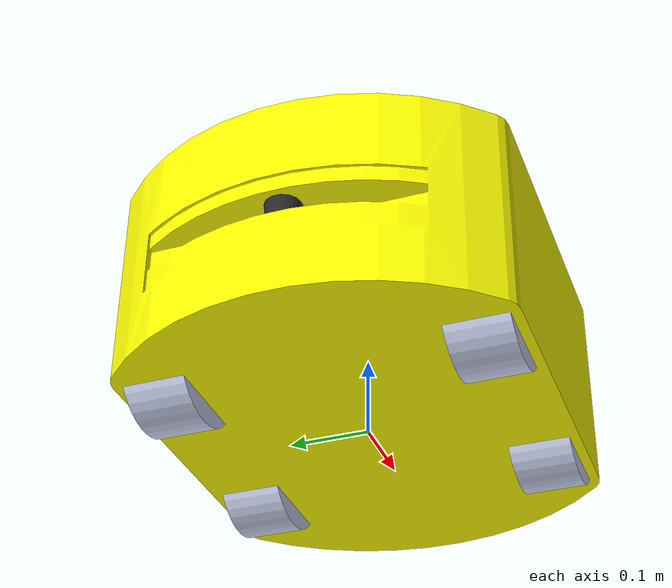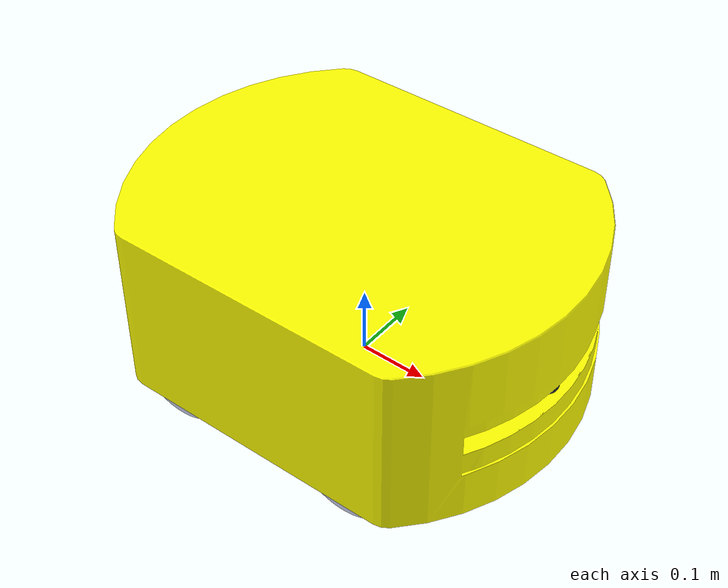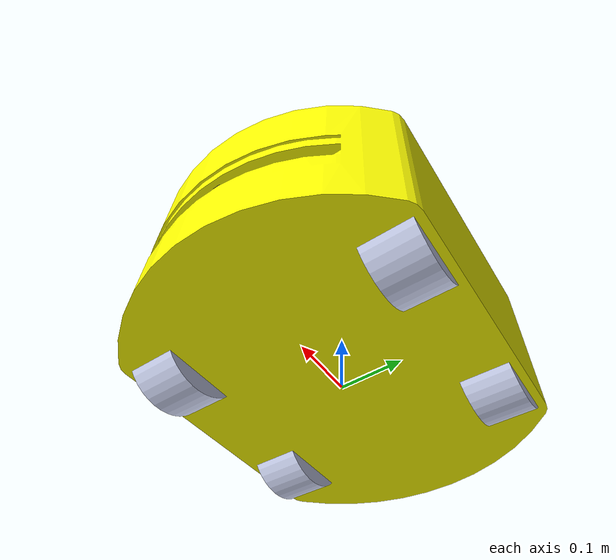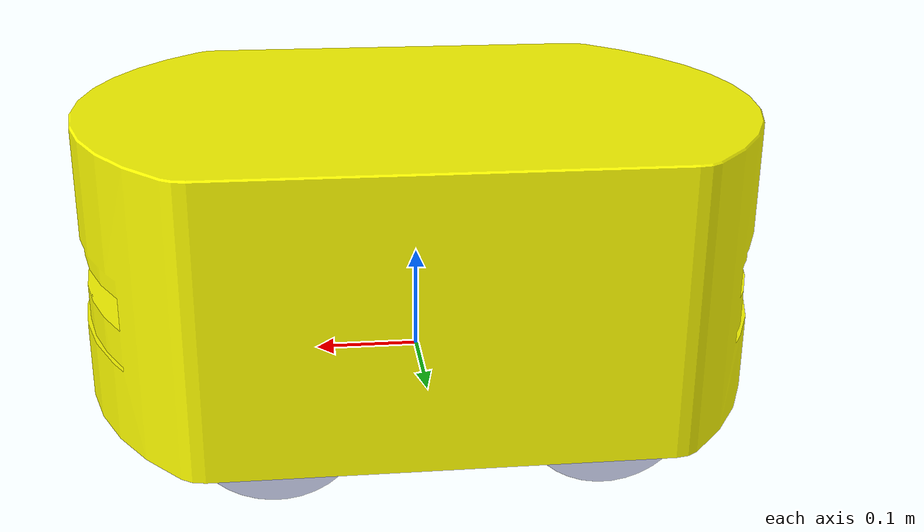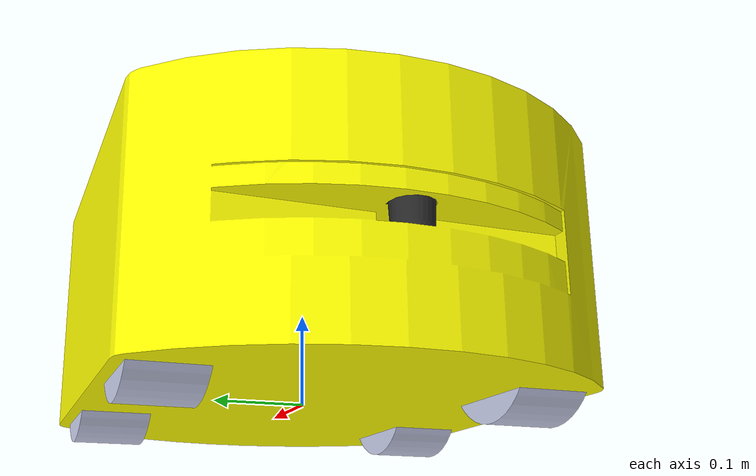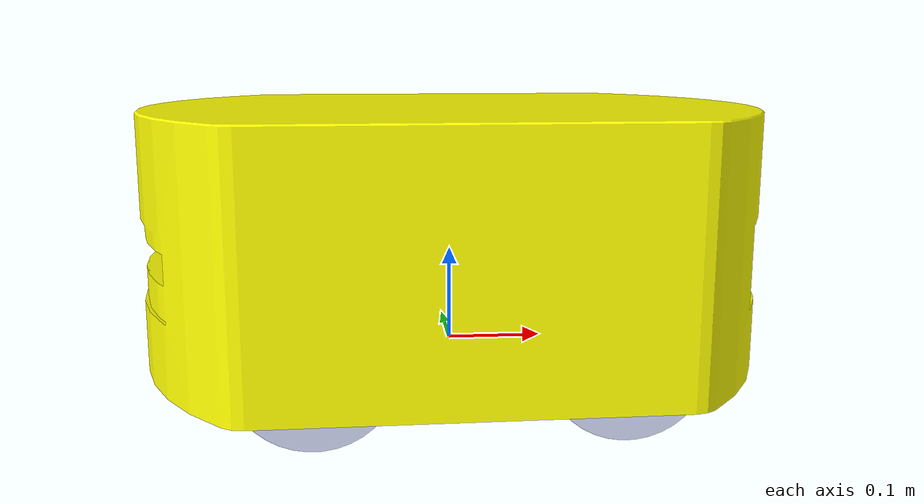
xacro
<?xml version="1.0"?>
<robot xmlns:xacro="http://www.ros.org/wiki/xacro"
       xmlns:sensor="http://playerstage.sourceforge.net/gazebo/xmlschema/#sensor"
       xmlns:controller="http://playerstage.sourceforge.net/gazebo/xmlschema/#controller"
       xmlns:interface="http://playerstage.sourceforge.net/gazebo/xmlschema/#interface"
  name="aiv_imu_v2">
 <xacro:macro name="default_inertial" params="mass">
               <inertial>
                       <mass value="${mass}" />
                       <inertia ixx="1.0" ixy="0.0" ixz="0.0"
                                iyy="1.0" iyz="0.0"
                                izz="1.0" />
               </inertial>
	</xacro:macro>

  <link name="base_footprint">
	<visual>
		<geometry>
			<box size="0.001 0.001 0.001"/>
		</geometry>
		<origin rpy="0 0 0" xyz="0 0 0"/>
	</visual>
	<xacro:default_inertial mass="0.0001"/>
  </link>
 <gazebo reference="base_footprint">
		<material>Gazebo/Green</material>
		<turnGravityOff>false</turnGravityOff>
	</gazebo>

   <joint name="base_footprint_joint" type="fixed">
		<origin xyz="0 0 0" rpy="0 0 0"/>
		<parent link="base_footprint" />
		<child link="base_link" />
	</joint>
  <link
    name="base_link">
    <inertial>
      <origin
        xyz="6.87793448505206E-17 -0.00156394179945474 0.129518871317834"
        rpy="0 0 0" />
      <mass
        value="152.136546659951" />
      <inertia
        ixx="4.14561167080814"
        ixy="1.08997913320005E-05"
        ixz="5.67688924911096E-16"
        iyy="5.38628750439473"
        iyz="-0.00487322107567128"
        izz="7.3945608306805" />
    </inertial>
    <visual>
      <origin
        xyz="0 0 0"
        rpy="0 0 0" />
      <geometry>
        <mesh
          filename="package://aiv_imu_v2/meshes/base_link.STL" />
      </geometry>
      <material
        name="">
        <color
          rgba="1 1 0 1" />
      </material>
    </visual>
    <collision>
      <origin
        xyz="0 0 0"
        rpy="0 0 0" />
      <geometry>
        <mesh
          filename="package://aiv_imu_v2/meshes/base_link.STL" />
      </geometry>
    </collision>
  </link>
  <link
    name="right_wheel1">
    <inertial>
      <origin
        xyz="-1.14991349775551E-12 -4.40446290550511E-13 0.0479999999990037"
        rpy="0 0 0" />
      <mass
        value="1.38940851892519" />
      <inertia
        ixx="0.00276634374084104"
        ixy="-3.38627612015008E-35"
        ixz="-6.86661375907486E-20"
        iyy="0.00276634374084104"
        iyz="-2.98281691521155E-35"
        izz="0.00419515021413011" />
    </inertial>
    <visual>
      <origin
        xyz="0 0 0"
        rpy="0 0 0" />
      <geometry>
        <mesh
          filename="package://aiv_imu_v2/meshes/right_wheel1.STL" />
      </geometry>
      <material
        name="">
        <color
          rgba="0.792156862745098 0.819607843137255 0.933333333333333 1" />
      </material>
    </visual>
    <collision>
      <origin
        xyz="0 0 0"
        rpy="0 0 0" />
      <geometry>
        <mesh
          filename="package://aiv_imu_v2/meshes/right_wheel1.STL" />
      </geometry>
    </collision>
<gazebo reference="right_wheel1">
         <mu1 value="1.0"/>
         <mu2 value="1.0"/>
         <kp  value="10000000.0" />
         <kd  value="1.0" />
         <fdir1 value="1 0 0"/>
	 <material>Gazebo/Black</material>
          <turnGravityOff>false</turnGravityOff> <turnGravityOff>false</turnGravityOff>
      </gazebo>
  </link>

  <joint
    name="base_to_wheel1"
    type="continuous">
    <origin
      xyz="0.139897063904446 0.14156844913427 0.0450000000000102"
      rpy="1.5707963267949 0 3.14159265358979" />
    <parent
      link="base_link" />
    <child
      link="right_wheel1" />
    <axis
      xyz="0 0 1" />
  </joint>
<transmission name="right_wheel1_joint_trans">
      <type>transmission_interface/SimpleTransmission</type>
      <joint name="base_to_wheel1" />
      <actuator name="right_wheel1_joint_motor">
        <hardwareInterface>EffortJointInterface</hardwareInterface>
        <mechanicalReduction>1</mechanicalReduction>
      </actuator>
    </transmission>
  <link
    name="left_wheel2">
    <inertial>
      <origin
        xyz="-6.38683550491237E-13 -4.73128480837914E-13 -0.0480000000000041"
        rpy="0 0 0" />
      <mass
        value="1.38940851892519" />
      <inertia
        ixx="0.00276634374084104"
        ixy="-2.74081616441698E-35"
        ixz="1.00733666245754E-17"
        iyy="0.00276634374084104"
        iyz="5.43666137255415E-36"
        izz="0.00419515021413011" />
    </inertial>
    <visual>
      <origin
        xyz="0 0 0"
        rpy="0 0 0" />
      <geometry>
        <mesh
          filename="package://aiv_imu_v2/meshes/left_wheel2.STL" />
      </geometry>
      <material
        name="">
        <color
          rgba="0.792156862745098 0.819607843137255 0.933333333333333 1" />
      </material>
    </visual>
    <collision>
      <origin
        xyz="0 0 0"
        rpy="0 0 0" />
      <geometry>
        <mesh
          filename="package://aiv_imu_v2/meshes/left_wheel2.STL" />
      </geometry>
    </collision>
<gazebo reference="left_wheel2">
         <mu1 value="1.0"/>
         <mu2 value="1.0"/>
         <kp  value="10000000.0" />
         <kd  value="1.0" />
         <fdir1 value="1 0 0"/>
	 <material>Gazebo/Black</material>
        <turnGravityOff>false</turnGravityOff> <turnGravityOff>false</turnGravityOff>
   </gazebo>
  </link>

  <joint
    name="base_to_wheel2"
    type="continuous">
    <origin
      xyz="0.139897063904454 -0.141724083720374 0.0450000000000127"
      rpy="1.5707963267949 0 3.14159265358979" />
    <parent
      link="base_link" />
    <child
      link="left_wheel2" />
    <axis
      xyz="0 0 1" />
  </joint>
<transmission name="left_wheel2_joint_trans">
      <type>transmission_interface/SimpleTransmission</type>
      <joint name="base_to_wheel2" />
      <actuator name="left_wheel2_joint_motor">
        <hardwareInterface>EffortJointInterface</hardwareInterface>
        <mechanicalReduction>1</mechanicalReduction>
      </actuator>
    </transmission>
  <link
    name="left_wheel3">
    <inertial>
      <origin
        xyz="-6.29857277445467E-13 5.33954824799565E-13 -0.0480000000000106"
        rpy="0 0 0" />
      <mass
        value="1.38940851892519" />
      <inertia
        ixx="0.00276634374084104"
        ixy="2.74301311244906E-35"
        ixz="1.01409598537663E-17"
        iyy="0.00276634374084104"
        iyz="4.15831126603387E-35"
        izz="0.00419515021413011" />
    </inertial>
    <visual>
      <origin
        xyz="0 0 0"
        rpy="0 0 0" />
      <geometry>
        <mesh
          filename="package://aiv_imu_v2/meshes/left_wheel3.STL" />
      </geometry>
      <material
        name="">
        <color
          rgba="0.792156862745098 0.819607843137255 0.933333333333333 1" />
      </material>
    </visual>
    <collision>
      <origin
        xyz="0 0 0"
        rpy="0 0 0" />
      <geometry>
        <mesh
          filename="package://aiv_imu_v2/meshes/left_wheel3.STL" />
      </geometry>
    </collision>
<gazebo reference="left_wheel3">
	 <mu1 value="1.0"/>
         <mu2 value="1.0"/>
         <kp  value="10000000.0" />
         <kd  value="1.0" />
         <fdir1 value="1 0 0"/>
	 <material>Gazebo/Black</material>
        <turnGravityOff>false</turnGravityOff> <turnGravityOff>false</turnGravityOff>
   </gazebo>
  </link>

  <joint
    name="base_to_wheel3"
    type="continuous">
    <origin
      xyz="-0.139482853114889 -0.141724083720375 0.0449999999997022"
      rpy="1.5707963267949 0 3.14159265358979" />
    <parent
      link="base_link" />
    <child
      link="left_wheel3" />
    <axis
      xyz="0 0 1" />
  </joint>
<transmission name="left_wheel3_joint_trans">
      <type>transmission_interface/SimpleTransmission</type>
      <joint name="base_to_wheel3" />
      <actuator name="left_wheel3_joint_motor">
        <hardwareInterface>EffortJointInterface</hardwareInterface>
        <mechanicalReduction>1</mechanicalReduction>
      </actuator>
    </transmission>
  <link
    name="right_wheel4">
    <inertial>
      <origin
        xyz="6.17117468237893E-13 -4.63573623932234E-13 0.0480000000000164"
        rpy="0 0 0" />
      <mass
        value="1.38940851892519" />
      <inertia
        ixx="0.00276634374084104"
        ixy="-1.09847401603853E-38"
        ixz="-6.86661375907486E-20"
        iyy="0.00276634374084104"
        iyz="-8.15262893040505E-36"
        izz="0.00419515021413011" />
    </inertial>
    <visual>
      <origin
        xyz="0 0 0"
        rpy="0 0 0" />
      <geometry>
        <mesh
          filename="package://aiv_imu_v2/meshes/right_wheel4.STL" />
      </geometry>
      <material
        name="">
        <color
          rgba="0.792156862745098 0.819607843137255 0.933333333333333 1" />
      </material>
    </visual>
    <collision>
      <origin
        xyz="0 0 0"
        rpy="0 0 0" />
      <geometry>
        <mesh
          filename="package://aiv_imu_v2/meshes/right_wheel4.STL" />
      </geometry>
    </collision>
<gazebo reference="right_wheel4">
	 <mu1 value="1.0"/>
         <mu2 value="1.0"/>
         <kp  value="10000000.0" />
         <kd  value="1.0" />
         <fdir1 value="1 0 0"/>
	 <material>Gazebo/Black</material>
        <turnGravityOff>false</turnGravityOff> <turnGravityOff>false</turnGravityOff>
      </gazebo>
  </link>
  <joint
    name="base_to_wheel4"
    type="continuous">
    <origin
      xyz="-0.139482853115031 0.14156844913422 0.0449999999996804"
      rpy="1.5707963267949 0 3.14159265358979" />
    <parent
      link="base_link" />
    <child
      link="right_wheel4" />
    <axis
      xyz="0 0 1" />
  </joint>
<transmission name="right_wheel4_joint_trans">
      <type>transmission_interface/SimpleTransmission</type>
      <joint name="base_to_wheel4" />
      <actuator name="right_wheel4_joint_motor">
        <hardwareInterface>EffortJointInterface</hardwareInterface>
        <mechanicalReduction>1</mechanicalReduction>
      </actuator>
    </transmission>
  <link
    name="hokuyo_Link_front">
    <inertial>
      <origin
        xyz="-0.000780692813445782 4.15767225386146E-05 -0.00546903856585218"
        rpy="0 0 0" />
      <mass
        value="0.134683421856808" />
      <inertia
        ixx="7.23289314303323E-05"
        ixy="3.0730745342767E-07"
        ixz="-6.60889302500689E-07"
        iyy="7.60198201005056E-05"
        iyz="1.05297506301973E-07"
        izz="4.80658661333251E-05" />
    </inertial>
    <visual>
      <origin
        xyz="0 0 0"
        rpy="0 0 0" />
      <geometry>
        <mesh
          filename="package://aiv_imu_v2/meshes/hokuyo_Link_front.STL" />
      </geometry>
      <material
        name="">
        <color
          rgba="0.156862745098039 0.156862745098039 0.156862745098039 1" />
      </material>
    </visual>
    <collision>
      <origin
        xyz="0 0 0"
        rpy="0 0 0" />
      <geometry>
        <mesh
          filename="package://aiv_imu_v2/meshes/hokuyo_Link_front.STL" />
      </geometry>
    </collision>
  </link>
  <joint
    name="hokuyo_link__front_joint"
    type="fixed">
    <origin
      xyz="0.285 0 0.138"
      rpy="-3.14159265358979 7.3142651636939E-29 5.15230954324254E-43" />
    <parent
      link="base_link" />
    <child
      link="hokuyo_Link_front" />
    <axis
      xyz="0 0 0" />
  </joint>
  <link
    name="hokuyo_Link_back">
    <inertial>
      <origin
        xyz="-0.000780692813445838 4.15767225385962E-05 -0.00546903856585218"
        rpy="0 0 0" />
      <mass
        value="0.134683421856808" />
      <inertia
        ixx="7.23289314303326E-05"
        ixy="3.0730745342766E-07"
        ixz="-6.60889302500727E-07"
        iyy="7.60198201005058E-05"
        iyz="1.05297506301981E-07"
        izz="4.80658661333252E-05" />
    </inertial>
    <visual>
      <origin
        xyz="0 0 0"
        rpy="0 0 0" />
      <geometry>
        <mesh
          filename="package://aiv_imu_v2/meshes/hokuyo_Link_back.STL" />
      </geometry>
      <material
        name="">
        <color
          rgba="0.156862745098039 0.156862745098039 0.156862745098039 1" />
      </material>
    </visual>
    <collision>
      <origin
        xyz="0 0 0"
        rpy="0 0 0" />
      <geometry>
        <mesh
          filename="package://aiv_imu_v2/meshes/hokuyo_Link_back.STL" />
      </geometry>
    </collision>
  </link>
  <joint
    name="hokuyo_Link_back_joint"
    type="fixed">
    <origin
      xyz="-0.284660355023666 0 0.138"
      rpy="-3.14159265358979 0 3.14159265358979" />
    <parent
      link="base_link" />
    <child
      link="hokuyo_Link_back" />
    <axis
      xyz="0 0 0" />
  </joint>
  <link
    name="base_imu_link">
    <inertial>
      <origin
        xyz="-1.30104260698261E-18 2.16840434497101E-19 0.003"
        rpy="0 0 0" />
      <mass
        value="0.0101714973637686" />
      <inertia
        ixx="1.18169580250659E-06"
        ixy="4.22479333968885E-22"
        ixz="1.79377087379717E-39"
        iyy="1.82413615455415E-06"
        iyz="0"
        izz="2.94480297287813E-06" />
    </inertial>
    <visual>
      <origin
        xyz="0 0 0"
        rpy="0 0 0" />
      <geometry>
        <mesh
          filename="package://aiv_imu_v2/meshes/base_imu_link.STL" />
      </geometry>
      <material
        name="">
        <color
          rgba="0.792156862745098 0.819607843137255 0.933333333333333 1" />
      </material>
    </visual>
    <collision>
      <origin
        xyz="0 0 0"
        rpy="0 0 0" />
      <geometry>
        <mesh
          filename="package://aiv_imu_v2/meshes/base_imu_link.STL" />
      </geometry>
    </collision>
  </link>
  <joint
    name="base_imu_link_Joint"
    type="fixed">
    <origin
      xyz="-0.00113592298461554 -0.00139829930856522 0.156"
      rpy="-3.14159265358979 0 0" />
    <parent
      link="base_link" />
    <child
      link="base_imu_link" />
    <axis
      xyz="0 0 0" />
  </joint>
</robot>
